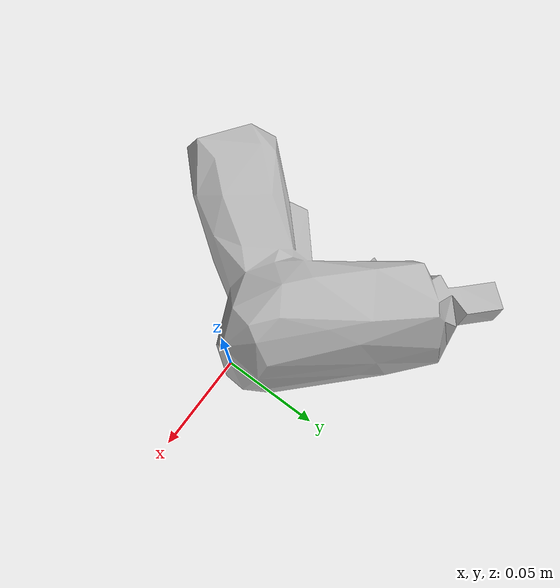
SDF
<?xml version='1.0'?>
<sdf version="1.4">
  <model name="072-b_toy_airplane">
    <static>false</static>
    <link name="link">
      <inertial>
        <pose>-0.0581838625415862 0.008412322789050755 0.02394915252792526 -1.2683112022108551 1.4078013091545496 0.18238763457474272</pose>
        <mass>0.054295143780662976</mass>
        <inertia>
          <ixx>0.00012071257899987392</ixx>
          <ixy>-1.8797747270587446e-20</ixy>
          <ixz>2.84766934765181e-20</ixz>
          <iyy>8.958664403838825e-05</iyy>
          <iyz>3.143905896634322e-21</iyz>
          <izz>4.795387345246836e-05</izz>
        </inertia>
      </inertial>
      <collision name="collision">
        <geometry>
          <mesh>
            <!-- Use a downsampled mesh for collisions -->
            <uri>model:///072-b_toy_airplane/072-b_toy_airplane_250_collision.stl</uri>
	        </mesh>
        </geometry>
        <surface>
      </surface>
      </collision>
      <visual name="visual">
        <geometry>
          <mesh>
            <uri>model:///072-b_toy_airplane/textured.obj</uri>
	        </mesh>
        </geometry>
        <material>
          <script>
            <uri>model:///072-b_toy_airplane/072-b_toy_airplane.material</uri>
            <name>072-b_toy_airplane</name>
          </script>
        </material>
      </visual>
    </link>
  </model>
</sdf>
